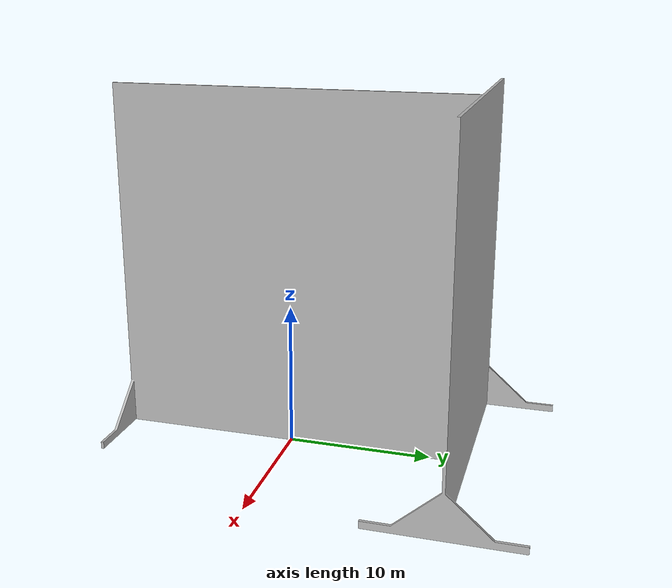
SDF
<?xml version='1.0'?>
<sdf version="1.4">
  <model name="my_model">
    <pose>0 0 0 0 0 0</pose>
    <static>false</static>
    <link name="link">

      <collision name="crane_collision">
        <geometry>
          <mesh>
          <uri>model://T-Wall/mashes/T-Wall.dae</uri>
	   <scale>1 1 1</scale>
          </mesh>
        </geometry>
      </collision>
      <visual name="visual">
        <geometry>
          <mesh>
          <uri>model://T-Wall/mashes/T-Wall.dae</uri>
	   <scale>1 1 1</scale>
          </mesh>
        </geometry>
      </visual>
    </link>
  </model>
</sdf>
